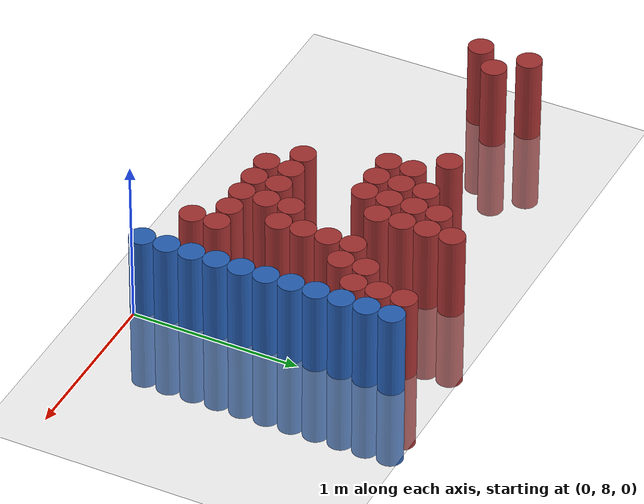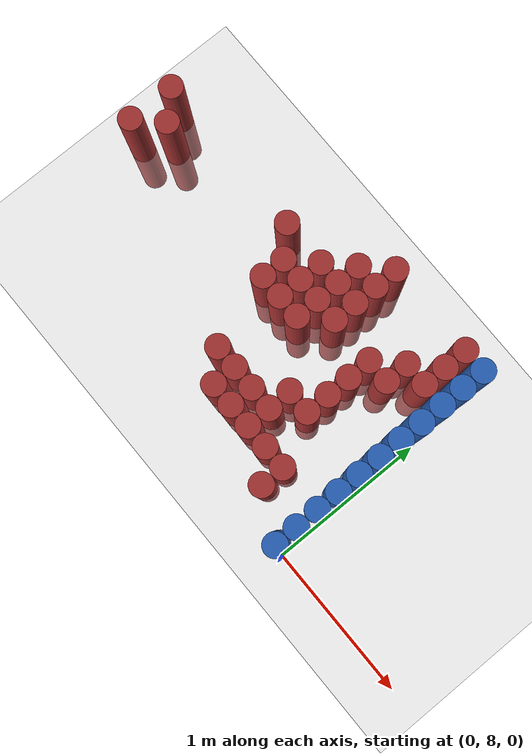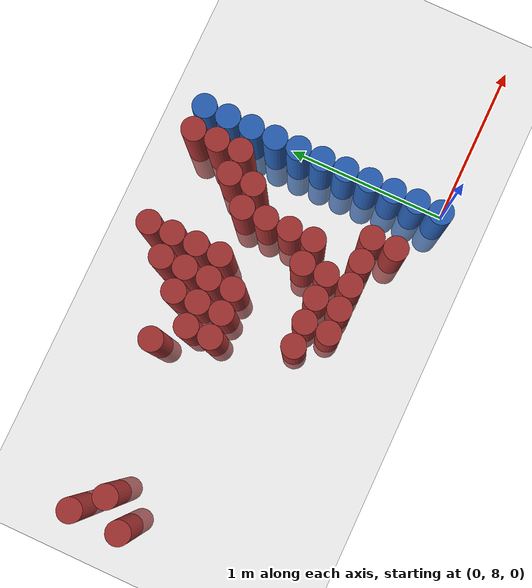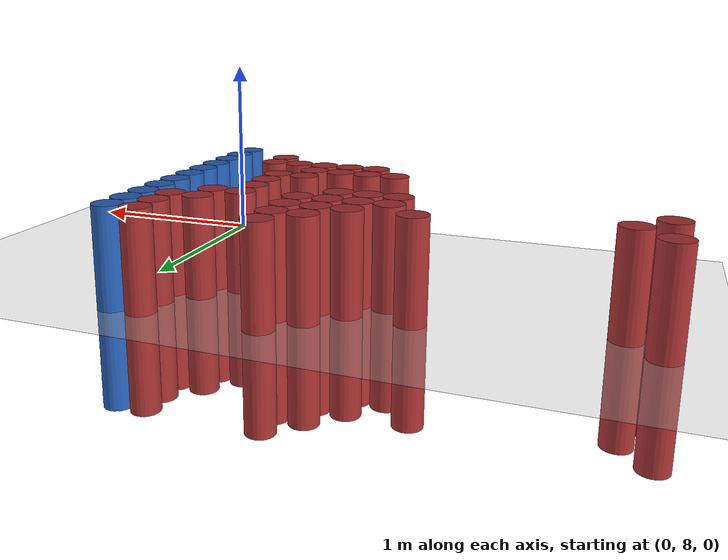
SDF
<sdf version="1.6">
 <world name="default">
  <model name="ground_plane">
   <static>1</static>
   <link name="link">
    <collision name="collision">
     <geometry><plane><normal>0 0 1</normal><size>100 100</size></plane></geometry>
     <surface><friction><ode><mu>100</mu><mu2>50</mu2></ode></friction></surface>
    </collision>
    <visual name="visual">
     <cast_shadows>0</cast_shadows>
     <geometry><plane><normal>0 0 1</normal><size>100 100</size></plane></geometry>
     <material>
      <script><uri>file://media/materials/scripts/gazebo.material</uri><name>Gazebo/Grey</name></script>
     </material>
    </visual>
   </link>
  </model>
  <model name="unit_cylinder_211">
   <static>1</static>
   <pose>-2.475000 8.925000 0.000000 0.000000 0.000000 0.000000</pose>
   <link name="link">
    <inertial>
     <mass>1</mass>
     <inertia><ixx>0.145833</ixx><ixy>0</ixy><ixz>0</ixz><iyy>0.145833</iyy><iyz>0</iyz><izz>0.125</izz></inertia>
    </inertial>
    <collision name="collision">
     <geometry><cylinder><radius>0.075000</radius><length>1</length></cylinder></geometry>
    </collision>
    <visual name="visual">
     <geometry><cylinder><radius>0.075000</radius><length>1</length></cylinder></geometry>
     <material>
      <ambient>0.648000 0.192000 0.192000 1</ambient>
      <diffuse>0.648000 0.192000 0.192000 1</diffuse>
     </material>
     <material>
      <script><name>Gazebo/Grey</name><uri>file://media/materials/scripts/gazebo.material</uri></script>
     </material>
    </visual>
   </link>
  </model>
  <model name="unit_cylinder_212">
   <static>1</static>
   <pose>-2.475000 9.225000 0.000000 0.000000 0.000000 0.000000</pose>
   <link name="link">
    <inertial>
     <mass>1</mass>
     <inertia><ixx>0.145833</ixx><ixy>0</ixy><ixz>0</ixz><iyy>0.145833</iyy><iyz>0</iyz><izz>0.125</izz></inertia>
    </inertial>
    <collision name="collision">
     <geometry><cylinder><radius>0.075000</radius><length>1</length></cylinder></geometry>
    </collision>
    <visual name="visual">
     <geometry><cylinder><radius>0.075000</radius><length>1</length></cylinder></geometry>
     <material>
      <ambient>0.648000 0.192000 0.192000 1</ambient>
      <diffuse>0.648000 0.192000 0.192000 1</diffuse>
     </material>
     <material>
      <script><name>Gazebo/Grey</name><uri>file://media/materials/scripts/gazebo.material</uri></script>
     </material>
    </visual>
   </link>
  </model>
  <model name="unit_cylinder_214">
   <static>1</static>
   <pose>-2.325000 9.075000 0.000000 0.000000 0.000000 0.000000</pose>
   <link name="link">
    <inertial>
     <mass>1</mass>
     <inertia><ixx>0.145833</ixx><ixy>0</ixy><ixz>0</ixz><iyy>0.145833</iyy><iyz>0</iyz><izz>0.125</izz></inertia>
    </inertial>
    <collision name="collision">
     <geometry><cylinder><radius>0.075000</radius><length>1</length></cylinder></geometry>
    </collision>
    <visual name="visual">
     <geometry><cylinder><radius>0.075000</radius><length>1</length></cylinder></geometry>
     <material>
      <ambient>0.648000 0.192000 0.192000 1</ambient>
      <diffuse>0.648000 0.192000 0.192000 1</diffuse>
     </material>
     <material>
      <script><name>Gazebo/Grey</name><uri>file://media/materials/scripts/gazebo.material</uri></script>
     </material>
    </visual>
   </link>
  </model>
  <model name="unit_cylinder_232">
   <static>1</static>
   <pose>-1.425000 9.225000 0.000000 0.000000 0.000000 0.000000</pose>
   <link name="link">
    <inertial>
     <mass>1</mass>
     <inertia><ixx>0.145833</ixx><ixy>0</ixy><ixz>0</ixz><iyy>0.145833</iyy><iyz>0</iyz><izz>0.125</izz></inertia>
    </inertial>
    <collision name="collision">
     <geometry><cylinder><radius>0.075000</radius><length>1</length></cylinder></geometry>
    </collision>
    <visual name="visual">
     <geometry><cylinder><radius>0.075000</radius><length>1</length></cylinder></geometry>
     <material>
      <ambient>0.648000 0.192000 0.192000 1</ambient>
      <diffuse>0.648000 0.192000 0.192000 1</diffuse>
     </material>
     <material>
      <script><name>Gazebo/Grey</name><uri>file://media/materials/scripts/gazebo.material</uri></script>
     </material>
    </visual>
   </link>
  </model>
  <model name="unit_cylinder_233">
   <static>1</static>
   <pose>-1.275000 8.925000 0.000000 0.000000 0.000000 0.000000</pose>
   <link name="link">
    <inertial>
     <mass>1</mass>
     <inertia><ixx>0.145833</ixx><ixy>0</ixy><ixz>0</ixz><iyy>0.145833</iyy><iyz>0</iyz><izz>0.125</izz></inertia>
    </inertial>
    <collision name="collision">
     <geometry><cylinder><radius>0.075000</radius><length>1</length></cylinder></geometry>
    </collision>
    <visual name="visual">
     <geometry><cylinder><radius>0.075000</radius><length>1</length></cylinder></geometry>
     <material>
      <ambient>0.648000 0.192000 0.192000 1</ambient>
      <diffuse>0.648000 0.192000 0.192000 1</diffuse>
     </material>
     <material>
      <script><name>Gazebo/Grey</name><uri>file://media/materials/scripts/gazebo.material</uri></script>
     </material>
    </visual>
   </link>
  </model>
  <model name="unit_cylinder_234">
   <static>1</static>
   <pose>-1.275000 9.075000 0.000000 0.000000 0.000000 0.000000</pose>
   <link name="link">
    <inertial>
     <mass>1</mass>
     <inertia><ixx>0.145833</ixx><ixy>0</ixy><ixz>0</ixz><iyy>0.145833</iyy><iyz>0</iyz><izz>0.125</izz></inertia>
    </inertial>
    <collision name="collision">
     <geometry><cylinder><radius>0.075000</radius><length>1</length></cylinder></geometry>
    </collision>
    <visual name="visual">
     <geometry><cylinder><radius>0.075000</radius><length>1</length></cylinder></geometry>
     <material>
      <ambient>0.648000 0.192000 0.192000 1</ambient>
      <diffuse>0.648000 0.192000 0.192000 1</diffuse>
     </material>
     <material>
      <script><name>Gazebo/Grey</name><uri>file://media/materials/scripts/gazebo.material</uri></script>
     </material>
    </visual>
   </link>
  </model>
  <model name="unit_cylinder_243">
   <static>1</static>
   <pose>-1.125000 8.475000 0.000000 0.000000 0.000000 0.000000</pose>
   <link name="link">
    <inertial>
     <mass>1</mass>
     <inertia><ixx>0.145833</ixx><ixy>0</ixy><ixz>0</ixz><iyy>0.145833</iyy><iyz>0</iyz><izz>0.125</izz></inertia>
    </inertial>
    <collision name="collision">
     <geometry><cylinder><radius>0.075000</radius><length>1</length></cylinder></geometry>
    </collision>
    <visual name="visual">
     <geometry><cylinder><radius>0.075000</radius><length>1</length></cylinder></geometry>
     <material>
      <ambient>0.648000 0.192000 0.192000 1</ambient>
      <diffuse>0.648000 0.192000 0.192000 1</diffuse>
     </material>
     <material>
      <script><name>Gazebo/Grey</name><uri>file://media/materials/scripts/gazebo.material</uri></script>
     </material>
    </visual>
   </link>
  </model>
  <model name="unit_cylinder_244">
   <static>1</static>
   <pose>-1.125000 8.925000 0.000000 0.000000 0.000000 0.000000</pose>
   <link name="link">
    <inertial>
     <mass>1</mass>
     <inertia><ixx>0.145833</ixx><ixy>0</ixy><ixz>0</ixz><iyy>0.145833</iyy><iyz>0</iyz><izz>0.125</izz></inertia>
    </inertial>
    <collision name="collision">
     <geometry><cylinder><radius>0.075000</radius><length>1</length></cylinder></geometry>
    </collision>
    <visual name="visual">
     <geometry><cylinder><radius>0.075000</radius><length>1</length></cylinder></geometry>
     <material>
      <ambient>0.648000 0.192000 0.192000 1</ambient>
      <diffuse>0.648000 0.192000 0.192000 1</diffuse>
     </material>
     <material>
      <script><name>Gazebo/Grey</name><uri>file://media/materials/scripts/gazebo.material</uri></script>
     </material>
    </visual>
   </link>
  </model>
  <model name="unit_cylinder_245">
   <static>1</static>
   <pose>-1.125000 9.075000 0.000000 0.000000 0.000000 0.000000</pose>
   <link name="link">
    <inertial>
     <mass>1</mass>
     <inertia><ixx>0.145833</ixx><ixy>0</ixy><ixz>0</ixz><iyy>0.145833</iyy><iyz>0</iyz><izz>0.125</izz></inertia>
    </inertial>
    <collision name="collision">
     <geometry><cylinder><radius>0.075000</radius><length>1</length></cylinder></geometry>
    </collision>
    <visual name="visual">
     <geometry><cylinder><radius>0.075000</radius><length>1</length></cylinder></geometry>
     <material>
      <ambient>0.648000 0.192000 0.192000 1</ambient>
      <diffuse>0.648000 0.192000 0.192000 1</diffuse>
     </material>
     <material>
      <script><name>Gazebo/Grey</name><uri>file://media/materials/scripts/gazebo.material</uri></script>
     </material>
    </visual>
   </link>
  </model>
  <model name="unit_cylinder_246">
   <static>1</static>
   <pose>-1.125000 9.225000 0.000000 0.000000 0.000000 0.000000</pose>
   <link name="link">
    <inertial>
     <mass>1</mass>
     <inertia><ixx>0.145833</ixx><ixy>0</ixy><ixz>0</ixz><iyy>0.145833</iyy><iyz>0</iyz><izz>0.125</izz></inertia>
    </inertial>
    <collision name="collision">
     <geometry><cylinder><radius>0.075000</radius><length>1</length></cylinder></geometry>
    </collision>
    <visual name="visual">
     <geometry><cylinder><radius>0.075000</radius><length>1</length></cylinder></geometry>
     <material>
      <ambient>0.648000 0.192000 0.192000 1</ambient>
      <diffuse>0.648000 0.192000 0.192000 1</diffuse>
     </material>
     <material>
      <script><name>Gazebo/Grey</name><uri>file://media/materials/scripts/gazebo.material</uri></script>
     </material>
    </visual>
   </link>
  </model>
  <model name="unit_cylinder_254">
   <static>1</static>
   <pose>-0.975000 8.325000 0.000000 0.000000 0.000000 0.000000</pose>
   <link name="link">
    <inertial>
     <mass>1</mass>
     <inertia><ixx>0.145833</ixx><ixy>0</ixy><ixz>0</ixz><iyy>0.145833</iyy><iyz>0</iyz><izz>0.125</izz></inertia>
    </inertial>
    <collision name="collision">
     <geometry><cylinder><radius>0.075000</radius><length>1</length></cylinder></geometry>
    </collision>
    <visual name="visual">
     <geometry><cylinder><radius>0.075000</radius><length>1</length></cylinder></geometry>
     <material>
      <ambient>0.648000 0.192000 0.192000 1</ambient>
      <diffuse>0.648000 0.192000 0.192000 1</diffuse>
     </material>
     <material>
      <script><name>Gazebo/Grey</name><uri>file://media/materials/scripts/gazebo.material</uri></script>
     </material>
    </visual>
   </link>
  </model>
  <model name="unit_cylinder_255">
   <static>1</static>
   <pose>-0.975000 8.475000 0.000000 0.000000 0.000000 0.000000</pose>
   <link name="link">
    <inertial>
     <mass>1</mass>
     <inertia><ixx>0.145833</ixx><ixy>0</ixy><ixz>0</ixz><iyy>0.145833</iyy><iyz>0</iyz><izz>0.125</izz></inertia>
    </inertial>
    <collision name="collision">
     <geometry><cylinder><radius>0.075000</radius><length>1</length></cylinder></geometry>
    </collision>
    <visual name="visual">
     <geometry><cylinder><radius>0.075000</radius><length>1</length></cylinder></geometry>
     <material>
      <ambient>0.648000 0.192000 0.192000 1</ambient>
      <diffuse>0.648000 0.192000 0.192000 1</diffuse>
     </material>
     <material>
      <script><name>Gazebo/Grey</name><uri>file://media/materials/scripts/gazebo.material</uri></script>
     </material>
    </visual>
   </link>
  </model>
  <model name="unit_cylinder_256">
   <static>1</static>
   <pose>-0.975000 8.925000 0.000000 0.000000 0.000000 0.000000</pose>
   <link name="link">
    <inertial>
     <mass>1</mass>
     <inertia><ixx>0.145833</ixx><ixy>0</ixy><ixz>0</ixz><iyy>0.145833</iyy><iyz>0</iyz><izz>0.125</izz></inertia>
    </inertial>
    <collision name="collision">
     <geometry><cylinder><radius>0.075000</radius><length>1</length></cylinder></geometry>
    </collision>
    <visual name="visual">
     <geometry><cylinder><radius>0.075000</radius><length>1</length></cylinder></geometry>
     <material>
      <ambient>0.648000 0.192000 0.192000 1</ambient>
      <diffuse>0.648000 0.192000 0.192000 1</diffuse>
     </material>
     <material>
      <script><name>Gazebo/Grey</name><uri>file://media/materials/scripts/gazebo.material</uri></script>
     </material>
    </visual>
   </link>
  </model>
  <model name="unit_cylinder_257">
   <static>1</static>
   <pose>-0.975000 9.075000 0.000000 0.000000 0.000000 0.000000</pose>
   <link name="link">
    <inertial>
     <mass>1</mass>
     <inertia><ixx>0.145833</ixx><ixy>0</ixy><ixz>0</ixz><iyy>0.145833</iyy><iyz>0</iyz><izz>0.125</izz></inertia>
    </inertial>
    <collision name="collision">
     <geometry><cylinder><radius>0.075000</radius><length>1</length></cylinder></geometry>
    </collision>
    <visual name="visual">
     <geometry><cylinder><radius>0.075000</radius><length>1</length></cylinder></geometry>
     <material>
      <ambient>0.648000 0.192000 0.192000 1</ambient>
      <diffuse>0.648000 0.192000 0.192000 1</diffuse>
     </material>
     <material>
      <script><name>Gazebo/Grey</name><uri>file://media/materials/scripts/gazebo.material</uri></script>
     </material>
    </visual>
   </link>
  </model>
  <model name="unit_cylinder_258">
   <static>1</static>
   <pose>-0.975000 9.225000 0.000000 0.000000 0.000000 0.000000</pose>
   <link name="link">
    <inertial>
     <mass>1</mass>
     <inertia><ixx>0.145833</ixx><ixy>0</ixy><ixz>0</ixz><iyy>0.145833</iyy><iyz>0</iyz><izz>0.125</izz></inertia>
    </inertial>
    <collision name="collision">
     <geometry><cylinder><radius>0.075000</radius><length>1</length></cylinder></geometry>
    </collision>
    <visual name="visual">
     <geometry><cylinder><radius>0.075000</radius><length>1</length></cylinder></geometry>
     <material>
      <ambient>0.648000 0.192000 0.192000 1</ambient>
      <diffuse>0.648000 0.192000 0.192000 1</diffuse>
     </material>
     <material>
      <script><name>Gazebo/Grey</name><uri>file://media/materials/scripts/gazebo.material</uri></script>
     </material>
    </visual>
   </link>
  </model>
  <model name="unit_cylinder_259">
   <static>1</static>
   <pose>-0.975000 9.375000 0.000000 0.000000 0.000000 0.000000</pose>
   <link name="link">
    <inertial>
     <mass>1</mass>
     <inertia><ixx>0.145833</ixx><ixy>0</ixy><ixz>0</ixz><iyy>0.145833</iyy><iyz>0</iyz><izz>0.125</izz></inertia>
    </inertial>
    <collision name="collision">
     <geometry><cylinder><radius>0.075000</radius><length>1</length></cylinder></geometry>
    </collision>
    <visual name="visual">
     <geometry><cylinder><radius>0.075000</radius><length>1</length></cylinder></geometry>
     <material>
      <ambient>0.648000 0.192000 0.192000 1</ambient>
      <diffuse>0.648000 0.192000 0.192000 1</diffuse>
     </material>
     <material>
      <script><name>Gazebo/Grey</name><uri>file://media/materials/scripts/gazebo.material</uri></script>
     </material>
    </visual>
   </link>
  </model>
  <model name="unit_cylinder_265">
   <static>1</static>
   <pose>-0.825000 8.325000 0.000000 0.000000 0.000000 0.000000</pose>
   <link name="link">
    <inertial>
     <mass>1</mass>
     <inertia><ixx>0.145833</ixx><ixy>0</ixy><ixz>0</ixz><iyy>0.145833</iyy><iyz>0</iyz><izz>0.125</izz></inertia>
    </inertial>
    <collision name="collision">
     <geometry><cylinder><radius>0.075000</radius><length>1</length></cylinder></geometry>
    </collision>
    <visual name="visual">
     <geometry><cylinder><radius>0.075000</radius><length>1</length></cylinder></geometry>
     <material>
      <ambient>0.648000 0.192000 0.192000 1</ambient>
      <diffuse>0.648000 0.192000 0.192000 1</diffuse>
     </material>
     <material>
      <script><name>Gazebo/Grey</name><uri>file://media/materials/scripts/gazebo.material</uri></script>
     </material>
    </visual>
   </link>
  </model>
  <model name="unit_cylinder_266">
   <static>1</static>
   <pose>-0.825000 8.475000 0.000000 0.000000 0.000000 0.000000</pose>
   <link name="link">
    <inertial>
     <mass>1</mass>
     <inertia><ixx>0.145833</ixx><ixy>0</ixy><ixz>0</ixz><iyy>0.145833</iyy><iyz>0</iyz><izz>0.125</izz></inertia>
    </inertial>
    <collision name="collision">
     <geometry><cylinder><radius>0.075000</radius><length>1</length></cylinder></geometry>
    </collision>
    <visual name="visual">
     <geometry><cylinder><radius>0.075000</radius><length>1</length></cylinder></geometry>
     <material>
      <ambient>0.648000 0.192000 0.192000 1</ambient>
      <diffuse>0.648000 0.192000 0.192000 1</diffuse>
     </material>
     <material>
      <script><name>Gazebo/Grey</name><uri>file://media/materials/scripts/gazebo.material</uri></script>
     </material>
    </visual>
   </link>
  </model>
  <model name="unit_cylinder_267">
   <static>1</static>
   <pose>-0.825000 9.075000 0.000000 0.000000 0.000000 0.000000</pose>
   <link name="link">
    <inertial>
     <mass>1</mass>
     <inertia><ixx>0.145833</ixx><ixy>0</ixy><ixz>0</ixz><iyy>0.145833</iyy><iyz>0</iyz><izz>0.125</izz></inertia>
    </inertial>
    <collision name="collision">
     <geometry><cylinder><radius>0.075000</radius><length>1</length></cylinder></geometry>
    </collision>
    <visual name="visual">
     <geometry><cylinder><radius>0.075000</radius><length>1</length></cylinder></geometry>
     <material>
      <ambient>0.648000 0.192000 0.192000 1</ambient>
      <diffuse>0.648000 0.192000 0.192000 1</diffuse>
     </material>
     <material>
      <script><name>Gazebo/Grey</name><uri>file://media/materials/scripts/gazebo.material</uri></script>
     </material>
    </visual>
   </link>
  </model>
  <model name="unit_cylinder_268">
   <static>1</static>
   <pose>-0.825000 9.225000 0.000000 0.000000 0.000000 0.000000</pose>
   <link name="link">
    <inertial>
     <mass>1</mass>
     <inertia><ixx>0.145833</ixx><ixy>0</ixy><ixz>0</ixz><iyy>0.145833</iyy><iyz>0</iyz><izz>0.125</izz></inertia>
    </inertial>
    <collision name="collision">
     <geometry><cylinder><radius>0.075000</radius><length>1</length></cylinder></geometry>
    </collision>
    <visual name="visual">
     <geometry><cylinder><radius>0.075000</radius><length>1</length></cylinder></geometry>
     <material>
      <ambient>0.648000 0.192000 0.192000 1</ambient>
      <diffuse>0.648000 0.192000 0.192000 1</diffuse>
     </material>
     <material>
      <script><name>Gazebo/Grey</name><uri>file://media/materials/scripts/gazebo.material</uri></script>
     </material>
    </visual>
   </link>
  </model>
  <model name="unit_cylinder_269">
   <static>1</static>
   <pose>-0.825000 9.375000 0.000000 0.000000 0.000000 0.000000</pose>
   <link name="link">
    <inertial>
     <mass>1</mass>
     <inertia><ixx>0.145833</ixx><ixy>0</ixy><ixz>0</ixz><iyy>0.145833</iyy><iyz>0</iyz><izz>0.125</izz></inertia>
    </inertial>
    <collision name="collision">
     <geometry><cylinder><radius>0.075000</radius><length>1</length></cylinder></geometry>
    </collision>
    <visual name="visual">
     <geometry><cylinder><radius>0.075000</radius><length>1</length></cylinder></geometry>
     <material>
      <ambient>0.648000 0.192000 0.192000 1</ambient>
      <diffuse>0.648000 0.192000 0.192000 1</diffuse>
     </material>
     <material>
      <script><name>Gazebo/Grey</name><uri>file://media/materials/scripts/gazebo.material</uri></script>
     </material>
    </visual>
   </link>
  </model>
  <model name="unit_cylinder_270">
   <static>1</static>
   <pose>-0.825000 9.525000 0.000000 0.000000 0.000000 0.000000</pose>
   <link name="link">
    <inertial>
     <mass>1</mass>
     <inertia><ixx>0.145833</ixx><ixy>0</ixy><ixz>0</ixz><iyy>0.145833</iyy><iyz>0</iyz><izz>0.125</izz></inertia>
    </inertial>
    <collision name="collision">
     <geometry><cylinder><radius>0.075000</radius><length>1</length></cylinder></geometry>
    </collision>
    <visual name="visual">
     <geometry><cylinder><radius>0.075000</radius><length>1</length></cylinder></geometry>
     <material>
      <ambient>0.648000 0.192000 0.192000 1</ambient>
      <diffuse>0.648000 0.192000 0.192000 1</diffuse>
     </material>
     <material>
      <script><name>Gazebo/Grey</name><uri>file://media/materials/scripts/gazebo.material</uri></script>
     </material>
    </visual>
   </link>
  </model>
  <model name="unit_cylinder_272">
   <static>1</static>
   <pose>-0.675000 8.325000 0.000000 0.000000 0.000000 0.000000</pose>
   <link name="link">
    <inertial>
     <mass>1</mass>
     <inertia><ixx>0.145833</ixx><ixy>0</ixy><ixz>0</ixz><iyy>0.145833</iyy><iyz>0</iyz><izz>0.125</izz></inertia>
    </inertial>
    <collision name="collision">
     <geometry><cylinder><radius>0.075000</radius><length>1</length></cylinder></geometry>
    </collision>
    <visual name="visual">
     <geometry><cylinder><radius>0.075000</radius><length>1</length></cylinder></geometry>
     <material>
      <ambient>0.648000 0.192000 0.192000 1</ambient>
      <diffuse>0.648000 0.192000 0.192000 1</diffuse>
     </material>
     <material>
      <script><name>Gazebo/Grey</name><uri>file://media/materials/scripts/gazebo.material</uri></script>
     </material>
    </visual>
   </link>
  </model>
  <model name="unit_cylinder_273">
   <static>1</static>
   <pose>-0.675000 8.475000 0.000000 0.000000 0.000000 0.000000</pose>
   <link name="link">
    <inertial>
     <mass>1</mass>
     <inertia><ixx>0.145833</ixx><ixy>0</ixy><ixz>0</ixz><iyy>0.145833</iyy><iyz>0</iyz><izz>0.125</izz></inertia>
    </inertial>
    <collision name="collision">
     <geometry><cylinder><radius>0.075000</radius><length>1</length></cylinder></geometry>
    </collision>
    <visual name="visual">
     <geometry><cylinder><radius>0.075000</radius><length>1</length></cylinder></geometry>
     <material>
      <ambient>0.648000 0.192000 0.192000 1</ambient>
      <diffuse>0.648000 0.192000 0.192000 1</diffuse>
     </material>
     <material>
      <script><name>Gazebo/Grey</name><uri>file://media/materials/scripts/gazebo.material</uri></script>
     </material>
    </visual>
   </link>
  </model>
  <model name="unit_cylinder_274">
   <static>1</static>
   <pose>-0.675000 8.625000 0.000000 0.000000 0.000000 0.000000</pose>
   <link name="link">
    <inertial>
     <mass>1</mass>
     <inertia><ixx>0.145833</ixx><ixy>0</ixy><ixz>0</ixz><iyy>0.145833</iyy><iyz>0</iyz><izz>0.125</izz></inertia>
    </inertial>
    <collision name="collision">
     <geometry><cylinder><radius>0.075000</radius><length>1</length></cylinder></geometry>
    </collision>
    <visual name="visual">
     <geometry><cylinder><radius>0.075000</radius><length>1</length></cylinder></geometry>
     <material>
      <ambient>0.648000 0.192000 0.192000 1</ambient>
      <diffuse>0.648000 0.192000 0.192000 1</diffuse>
     </material>
     <material>
      <script><name>Gazebo/Grey</name><uri>file://media/materials/scripts/gazebo.material</uri></script>
     </material>
    </visual>
   </link>
  </model>
  <model name="unit_cylinder_277">
   <static>1</static>
   <pose>-0.525000 8.325000 0.000000 0.000000 0.000000 0.000000</pose>
   <link name="link">
    <inertial>
     <mass>1</mass>
     <inertia><ixx>0.145833</ixx><ixy>0</ixy><ixz>0</ixz><iyy>0.145833</iyy><iyz>0</iyz><izz>0.125</izz></inertia>
    </inertial>
    <collision name="collision">
     <geometry><cylinder><radius>0.075000</radius><length>1</length></cylinder></geometry>
    </collision>
    <visual name="visual">
     <geometry><cylinder><radius>0.075000</radius><length>1</length></cylinder></geometry>
     <material>
      <ambient>0.648000 0.192000 0.192000 1</ambient>
      <diffuse>0.648000 0.192000 0.192000 1</diffuse>
     </material>
     <material>
      <script><name>Gazebo/Grey</name><uri>file://media/materials/scripts/gazebo.material</uri></script>
     </material>
    </visual>
   </link>
  </model>
  <model name="unit_cylinder_278">
   <static>1</static>
   <pose>-0.525000 8.625000 0.000000 0.000000 0.000000 0.000000</pose>
   <link name="link">
    <inertial>
     <mass>1</mass>
     <inertia><ixx>0.145833</ixx><ixy>0</ixy><ixz>0</ixz><iyy>0.145833</iyy><iyz>0</iyz><izz>0.125</izz></inertia>
    </inertial>
    <collision name="collision">
     <geometry><cylinder><radius>0.075000</radius><length>1</length></cylinder></geometry>
    </collision>
    <visual name="visual">
     <geometry><cylinder><radius>0.075000</radius><length>1</length></cylinder></geometry>
     <material>
      <ambient>0.648000 0.192000 0.192000 1</ambient>
      <diffuse>0.648000 0.192000 0.192000 1</diffuse>
     </material>
     <material>
      <script><name>Gazebo/Grey</name><uri>file://media/materials/scripts/gazebo.material</uri></script>
     </material>
    </visual>
   </link>
  </model>
  <model name="unit_cylinder_279">
   <static>1</static>
   <pose>-0.525000 8.775000 0.000000 0.000000 0.000000 0.000000</pose>
   <link name="link">
    <inertial>
     <mass>1</mass>
     <inertia><ixx>0.145833</ixx><ixy>0</ixy><ixz>0</ixz><iyy>0.145833</iyy><iyz>0</iyz><izz>0.125</izz></inertia>
    </inertial>
    <collision name="collision">
     <geometry><cylinder><radius>0.075000</radius><length>1</length></cylinder></geometry>
    </collision>
    <visual name="visual">
     <geometry><cylinder><radius>0.075000</radius><length>1</length></cylinder></geometry>
     <material>
      <ambient>0.648000 0.192000 0.192000 1</ambient>
      <diffuse>0.648000 0.192000 0.192000 1</diffuse>
     </material>
     <material>
      <script><name>Gazebo/Grey</name><uri>file://media/materials/scripts/gazebo.material</uri></script>
     </material>
    </visual>
   </link>
  </model>
  <model name="unit_cylinder_280">
   <static>1</static>
   <pose>-0.525000 8.925000 0.000000 0.000000 0.000000 0.000000</pose>
   <link name="link">
    <inertial>
     <mass>1</mass>
     <inertia><ixx>0.145833</ixx><ixy>0</ixy><ixz>0</ixz><iyy>0.145833</iyy><iyz>0</iyz><izz>0.125</izz></inertia>
    </inertial>
    <collision name="collision">
     <geometry><cylinder><radius>0.075000</radius><length>1</length></cylinder></geometry>
    </collision>
    <visual name="visual">
     <geometry><cylinder><radius>0.075000</radius><length>1</length></cylinder></geometry>
     <material>
      <ambient>0.648000 0.192000 0.192000 1</ambient>
      <diffuse>0.648000 0.192000 0.192000 1</diffuse>
     </material>
     <material>
      <script><name>Gazebo/Grey</name><uri>file://media/materials/scripts/gazebo.material</uri></script>
     </material>
    </visual>
   </link>
  </model>
  <model name="unit_cylinder_281">
   <static>1</static>
   <pose>-0.525000 9.075000 0.000000 0.000000 0.000000 0.000000</pose>
   <link name="link">
    <inertial>
     <mass>1</mass>
     <inertia><ixx>0.145833</ixx><ixy>0</ixy><ixz>0</ixz><iyy>0.145833</iyy><iyz>0</iyz><izz>0.125</izz></inertia>
    </inertial>
    <collision name="collision">
     <geometry><cylinder><radius>0.075000</radius><length>1</length></cylinder></geometry>
    </collision>
    <visual name="visual">
     <geometry><cylinder><radius>0.075000</radius><length>1</length></cylinder></geometry>
     <material>
      <ambient>0.648000 0.192000 0.192000 1</ambient>
      <diffuse>0.648000 0.192000 0.192000 1</diffuse>
     </material>
     <material>
      <script><name>Gazebo/Grey</name><uri>file://media/materials/scripts/gazebo.material</uri></script>
     </material>
    </visual>
   </link>
  </model>
  <model name="unit_cylinder_288">
   <static>1</static>
   <pose>-0.375000 8.175000 0.000000 0.000000 0.000000 0.000000</pose>
   <link name="link">
    <inertial>
     <mass>1</mass>
     <inertia><ixx>0.145833</ixx><ixy>0</ixy><ixz>0</ixz><iyy>0.145833</iyy><iyz>0</iyz><izz>0.125</izz></inertia>
    </inertial>
    <collision name="collision">
     <geometry><cylinder><radius>0.075000</radius><length>1</length></cylinder></geometry>
    </collision>
    <visual name="visual">
     <geometry><cylinder><radius>0.075000</radius><length>1</length></cylinder></geometry>
     <material>
      <ambient>0.648000 0.192000 0.192000 1</ambient>
      <diffuse>0.648000 0.192000 0.192000 1</diffuse>
     </material>
     <material>
      <script><name>Gazebo/Grey</name><uri>file://media/materials/scripts/gazebo.material</uri></script>
     </material>
    </visual>
   </link>
  </model>
  <model name="unit_cylinder_289">
   <static>1</static>
   <pose>-0.375000 8.325000 0.000000 0.000000 0.000000 0.000000</pose>
   <link name="link">
    <inertial>
     <mass>1</mass>
     <inertia><ixx>0.145833</ixx><ixy>0</ixy><ixz>0</ixz><iyy>0.145833</iyy><iyz>0</iyz><izz>0.125</izz></inertia>
    </inertial>
    <collision name="collision">
     <geometry><cylinder><radius>0.075000</radius><length>1</length></cylinder></geometry>
    </collision>
    <visual name="visual">
     <geometry><cylinder><radius>0.075000</radius><length>1</length></cylinder></geometry>
     <material>
      <ambient>0.648000 0.192000 0.192000 1</ambient>
      <diffuse>0.648000 0.192000 0.192000 1</diffuse>
     </material>
     <material>
      <script><name>Gazebo/Grey</name><uri>file://media/materials/scripts/gazebo.material</uri></script>
     </material>
    </visual>
   </link>
  </model>
  <model name="unit_cylinder_290">
   <static>1</static>
   <pose>-0.375000 9.075000 0.000000 0.000000 0.000000 0.000000</pose>
   <link name="link">
    <inertial>
     <mass>1</mass>
     <inertia><ixx>0.145833</ixx><ixy>0</ixy><ixz>0</ixz><iyy>0.145833</iyy><iyz>0</iyz><izz>0.125</izz></inertia>
    </inertial>
    <collision name="collision">
     <geometry><cylinder><radius>0.075000</radius><length>1</length></cylinder></geometry>
    </collision>
    <visual name="visual">
     <geometry><cylinder><radius>0.075000</radius><length>1</length></cylinder></geometry>
     <material>
      <ambient>0.648000 0.192000 0.192000 1</ambient>
      <diffuse>0.648000 0.192000 0.192000 1</diffuse>
     </material>
     <material>
      <script><name>Gazebo/Grey</name><uri>file://media/materials/scripts/gazebo.material</uri></script>
     </material>
    </visual>
   </link>
  </model>
  <model name="unit_cylinder_291">
   <static>1</static>
   <pose>-0.375000 9.225000 0.000000 0.000000 0.000000 0.000000</pose>
   <link name="link">
    <inertial>
     <mass>1</mass>
     <inertia><ixx>0.145833</ixx><ixy>0</ixy><ixz>0</ixz><iyy>0.145833</iyy><iyz>0</iyz><izz>0.125</izz></inertia>
    </inertial>
    <collision name="collision">
     <geometry><cylinder><radius>0.075000</radius><length>1</length></cylinder></geometry>
    </collision>
    <visual name="visual">
     <geometry><cylinder><radius>0.075000</radius><length>1</length></cylinder></geometry>
     <material>
      <ambient>0.648000 0.192000 0.192000 1</ambient>
      <diffuse>0.648000 0.192000 0.192000 1</diffuse>
     </material>
     <material>
      <script><name>Gazebo/Grey</name><uri>file://media/materials/scripts/gazebo.material</uri></script>
     </material>
    </visual>
   </link>
  </model>
  <model name="unit_cylinder_301">
   <static>1</static>
   <pose>-0.225000 9.225000 0.000000 0.000000 0.000000 0.000000</pose>
   <link name="link">
    <inertial>
     <mass>1</mass>
     <inertia><ixx>0.145833</ixx><ixy>0</ixy><ixz>0</ixz><iyy>0.145833</iyy><iyz>0</iyz><izz>0.125</izz></inertia>
    </inertial>
    <collision name="collision">
     <geometry><cylinder><radius>0.075000</radius><length>1</length></cylinder></geometry>
    </collision>
    <visual name="visual">
     <geometry><cylinder><radius>0.075000</radius><length>1</length></cylinder></geometry>
     <material>
      <ambient>0.648000 0.192000 0.192000 1</ambient>
      <diffuse>0.648000 0.192000 0.192000 1</diffuse>
     </material>
     <material>
      <script><name>Gazebo/Grey</name><uri>file://media/materials/scripts/gazebo.material</uri></script>
     </material>
    </visual>
   </link>
  </model>
  <model name="unit_cylinder_302">
   <static>1</static>
   <pose>-0.225000 9.375000 0.000000 0.000000 0.000000 0.000000</pose>
   <link name="link">
    <inertial>
     <mass>1</mass>
     <inertia><ixx>0.145833</ixx><ixy>0</ixy><ixz>0</ixz><iyy>0.145833</iyy><iyz>0</iyz><izz>0.125</izz></inertia>
    </inertial>
    <collision name="collision">
     <geometry><cylinder><radius>0.075000</radius><length>1</length></cylinder></geometry>
    </collision>
    <visual name="visual">
     <geometry><cylinder><radius>0.075000</radius><length>1</length></cylinder></geometry>
     <material>
      <ambient>0.648000 0.192000 0.192000 1</ambient>
      <diffuse>0.648000 0.192000 0.192000 1</diffuse>
     </material>
     <material>
      <script><name>Gazebo/Grey</name><uri>file://media/materials/scripts/gazebo.material</uri></script>
     </material>
    </visual>
   </link>
  </model>
  <model name="unit_cylinder_303">
   <static>1</static>
   <pose>-0.225000 9.525000 0.000000 0.000000 0.000000 0.000000</pose>
   <link name="link">
    <inertial>
     <mass>1</mass>
     <inertia><ixx>0.145833</ixx><ixy>0</ixy><ixz>0</ixz><iyy>0.145833</iyy><iyz>0</iyz><izz>0.125</izz></inertia>
    </inertial>
    <collision name="collision">
     <geometry><cylinder><radius>0.075000</radius><length>1</length></cylinder></geometry>
    </collision>
    <visual name="visual">
     <geometry><cylinder><radius>0.075000</radius><length>1</length></cylinder></geometry>
     <material>
      <ambient>0.648000 0.192000 0.192000 1</ambient>
      <diffuse>0.648000 0.192000 0.192000 1</diffuse>
     </material>
     <material>
      <script><name>Gazebo/Grey</name><uri>file://media/materials/scripts/gazebo.material</uri></script>
     </material>
    </visual>
   </link>
  </model>
  <model name="unit_cylinder_323">
   <static>1</static>
   <pose>-0.075000 8.025000 0.000000 0.000000 0.000000 0.000000</pose>
   <link name="link">
    <inertial>
     <mass>1</mass>
     <inertia><ixx>0.145833</ixx><ixy>0</ixy><ixz>0</ixz><iyy>0.145833</iyy><iyz>0</iyz><izz>0.125</izz></inertia>
    </inertial>
    <collision name="collision">
     <geometry><cylinder><radius>0.075000</radius><length>1</length></cylinder></geometry>
    </collision>
    <visual name="visual">
     <geometry><cylinder><radius>0.075000</radius><length>1</length></cylinder></geometry>
     <material>
      <ambient>0.152000 0.379000 0.720000 1</ambient>
      <diffuse>0.152000 0.379000 0.720000 1</diffuse>
     </material>
     <material>
      <script><name>Gazebo/Grey</name><uri>file://media/materials/scripts/gazebo.material</uri></script>
     </material>
    </visual>
   </link>
  </model>
  <model name="unit_cylinder_324">
   <static>1</static>
   <pose>-0.075000 8.175000 0.000000 0.000000 0.000000 0.000000</pose>
   <link name="link">
    <inertial>
     <mass>1</mass>
     <inertia><ixx>0.145833</ixx><ixy>0</ixy><ixz>0</ixz><iyy>0.145833</iyy><iyz>0</iyz><izz>0.125</izz></inertia>
    </inertial>
    <collision name="collision">
     <geometry><cylinder><radius>0.075000</radius><length>1</length></cylinder></geometry>
    </collision>
    <visual name="visual">
     <geometry><cylinder><radius>0.075000</radius><length>1</length></cylinder></geometry>
     <material>
      <ambient>0.152000 0.379000 0.720000 1</ambient>
      <diffuse>0.152000 0.379000 0.720000 1</diffuse>
     </material>
     <material>
      <script><name>Gazebo/Grey</name><uri>file://media/materials/scripts/gazebo.material</uri></script>
     </material>
    </visual>
   </link>
  </model>
  <model name="unit_cylinder_325">
   <static>1</static>
   <pose>-0.075000 8.325000 0.000000 0.000000 0.000000 0.000000</pose>
   <link name="link">
    <inertial>
     <mass>1</mass>
     <inertia><ixx>0.145833</ixx><ixy>0</ixy><ixz>0</ixz><iyy>0.145833</iyy><iyz>0</iyz><izz>0.125</izz></inertia>
    </inertial>
    <collision name="collision">
     <geometry><cylinder><radius>0.075000</radius><length>1</length></cylinder></geometry>
    </collision>
    <visual name="visual">
     <geometry><cylinder><radius>0.075000</radius><length>1</length></cylinder></geometry>
     <material>
      <ambient>0.152000 0.379000 0.720000 1</ambient>
      <diffuse>0.152000 0.379000 0.720000 1</diffuse>
     </material>
     <material>
      <script><name>Gazebo/Grey</name><uri>file://media/materials/scripts/gazebo.material</uri></script>
     </material>
    </visual>
   </link>
  </model>
  <model name="unit_cylinder_326">
   <static>1</static>
   <pose>-0.075000 8.475000 0.000000 0.000000 0.000000 0.000000</pose>
   <link name="link">
    <inertial>
     <mass>1</mass>
     <inertia><ixx>0.145833</ixx><ixy>0</ixy><ixz>0</ixz><iyy>0.145833</iyy><iyz>0</iyz><izz>0.125</izz></inertia>
    </inertial>
    <collision name="collision">
     <geometry><cylinder><radius>0.075000</radius><length>1</length></cylinder></geometry>
    </collision>
    <visual name="visual">
     <geometry><cylinder><radius>0.075000</radius><length>1</length></cylinder></geometry>
     <material>
      <ambient>0.152000 0.379000 0.720000 1</ambient>
      <diffuse>0.152000 0.379000 0.720000 1</diffuse>
     </material>
     <material>
      <script><name>Gazebo/Grey</name><uri>file://media/materials/scripts/gazebo.material</uri></script>
     </material>
    </visual>
   </link>
  </model>
  <model name="unit_cylinder_327">
   <static>1</static>
   <pose>-0.075000 8.625000 0.000000 0.000000 0.000000 0.000000</pose>
   <link name="link">
    <inertial>
     <mass>1</mass>
     <inertia><ixx>0.145833</ixx><ixy>0</ixy><ixz>0</ixz><iyy>0.145833</iyy><iyz>0</iyz><izz>0.125</izz></inertia>
    </inertial>
    <collision name="collision">
     <geometry><cylinder><radius>0.075000</radius><length>1</length></cylinder></geometry>
    </collision>
    <visual name="visual">
     <geometry><cylinder><radius>0.075000</radius><length>1</length></cylinder></geometry>
     <material>
      <ambient>0.152000 0.379000 0.720000 1</ambient>
      <diffuse>0.152000 0.379000 0.720000 1</diffuse>
     </material>
     <material>
      <script><name>Gazebo/Grey</name><uri>file://media/materials/scripts/gazebo.material</uri></script>
     </material>
    </visual>
   </link>
  </model>
  <model name="unit_cylinder_328">
   <static>1</static>
   <pose>-0.075000 8.775000 0.000000 0.000000 0.000000 0.000000</pose>
   <link name="link">
    <inertial>
     <mass>1</mass>
     <inertia><ixx>0.145833</ixx><ixy>0</ixy><ixz>0</ixz><iyy>0.145833</iyy><iyz>0</iyz><izz>0.125</izz></inertia>
    </inertial>
    <collision name="collision">
     <geometry><cylinder><radius>0.075000</radius><length>1</length></cylinder></geometry>
    </collision>
    <visual name="visual">
     <geometry><cylinder><radius>0.075000</radius><length>1</length></cylinder></geometry>
     <material>
      <ambient>0.152000 0.379000 0.720000 1</ambient>
      <diffuse>0.152000 0.379000 0.720000 1</diffuse>
     </material>
     <material>
      <script><name>Gazebo/Grey</name><uri>file://media/materials/scripts/gazebo.material</uri></script>
     </material>
    </visual>
   </link>
  </model>
  <model name="unit_cylinder_329">
   <static>1</static>
   <pose>-0.075000 8.925000 0.000000 0.000000 0.000000 0.000000</pose>
   <link name="link">
    <inertial>
     <mass>1</mass>
     <inertia><ixx>0.145833</ixx><ixy>0</ixy><ixz>0</ixz><iyy>0.145833</iyy><iyz>0</iyz><izz>0.125</izz></inertia>
    </inertial>
    <collision name="collision">
     <geometry><cylinder><radius>0.075000</radius><length>1</length></cylinder></geometry>
    </collision>
    <visual name="visual">
     <geometry><cylinder><radius>0.075000</radius><length>1</length></cylinder></geometry>
     <material>
      <ambient>0.152000 0.379000 0.720000 1</ambient>
      <diffuse>0.152000 0.379000 0.720000 1</diffuse>
     </material>
     <material>
      <script><name>Gazebo/Grey</name><uri>file://media/materials/scripts/gazebo.material</uri></script>
     </material>
    </visual>
   </link>
  </model>
  <model name="unit_cylinder_330">
   <static>1</static>
   <pose>-0.075000 9.075000 0.000000 0.000000 0.000000 0.000000</pose>
   <link name="link">
    <inertial>
     <mass>1</mass>
     <inertia><ixx>0.145833</ixx><ixy>0</ixy><ixz>0</ixz><iyy>0.145833</iyy><iyz>0</iyz><izz>0.125</izz></inertia>
    </inertial>
    <collision name="collision">
     <geometry><cylinder><radius>0.075000</radius><length>1</length></cylinder></geometry>
    </collision>
    <visual name="visual">
     <geometry><cylinder><radius>0.075000</radius><length>1</length></cylinder></geometry>
     <material>
      <ambient>0.152000 0.379000 0.720000 1</ambient>
      <diffuse>0.152000 0.379000 0.720000 1</diffuse>
     </material>
     <material>
      <script><name>Gazebo/Grey</name><uri>file://media/materials/scripts/gazebo.material</uri></script>
     </material>
    </visual>
   </link>
  </model>
  <model name="unit_cylinder_331">
   <static>1</static>
   <pose>-0.075000 9.225000 0.000000 0.000000 0.000000 0.000000</pose>
   <link name="link">
    <inertial>
     <mass>1</mass>
     <inertia><ixx>0.145833</ixx><ixy>0</ixy><ixz>0</ixz><iyy>0.145833</iyy><iyz>0</iyz><izz>0.125</izz></inertia>
    </inertial>
    <collision name="collision">
     <geometry><cylinder><radius>0.075000</radius><length>1</length></cylinder></geometry>
    </collision>
    <visual name="visual">
     <geometry><cylinder><radius>0.075000</radius><length>1</length></cylinder></geometry>
     <material>
      <ambient>0.152000 0.379000 0.720000 1</ambient>
      <diffuse>0.152000 0.379000 0.720000 1</diffuse>
     </material>
     <material>
      <script><name>Gazebo/Grey</name><uri>file://media/materials/scripts/gazebo.material</uri></script>
     </material>
    </visual>
   </link>
  </model>
  <model name="unit_cylinder_332">
   <static>1</static>
   <pose>-0.075000 9.375000 0.000000 0.000000 0.000000 0.000000</pose>
   <link name="link">
    <inertial>
     <mass>1</mass>
     <inertia><ixx>0.145833</ixx><ixy>0</ixy><ixz>0</ixz><iyy>0.145833</iyy><iyz>0</iyz><izz>0.125</izz></inertia>
    </inertial>
    <collision name="collision">
     <geometry><cylinder><radius>0.075000</radius><length>1</length></cylinder></geometry>
    </collision>
    <visual name="visual">
     <geometry><cylinder><radius>0.075000</radius><length>1</length></cylinder></geometry>
     <material>
      <ambient>0.152000 0.379000 0.720000 1</ambient>
      <diffuse>0.152000 0.379000 0.720000 1</diffuse>
     </material>
     <material>
      <script><name>Gazebo/Grey</name><uri>file://media/materials/scripts/gazebo.material</uri></script>
     </material>
    </visual>
   </link>
  </model>
  <model name="unit_cylinder_333">
   <static>1</static>
   <pose>-0.075000 9.525000 0.000000 0.000000 0.000000 0.000000</pose>
   <link name="link">
    <inertial>
     <mass>1</mass>
     <inertia><ixx>0.145833</ixx><ixy>0</ixy><ixz>0</ixz><iyy>0.145833</iyy><iyz>0</iyz><izz>0.125</izz></inertia>
    </inertial>
    <collision name="collision">
     <geometry><cylinder><radius>0.075000</radius><length>1</length></cylinder></geometry>
    </collision>
    <visual name="visual">
     <geometry><cylinder><radius>0.075000</radius><length>1</length></cylinder></geometry>
     <material>
      <ambient>0.152000 0.379000 0.720000 1</ambient>
      <diffuse>0.152000 0.379000 0.720000 1</diffuse>
     </material>
     <material>
      <script><name>Gazebo/Grey</name><uri>file://media/materials/scripts/gazebo.material</uri></script>
     </material>
    </visual>
   </link>
  </model>
 </world>
</sdf>
